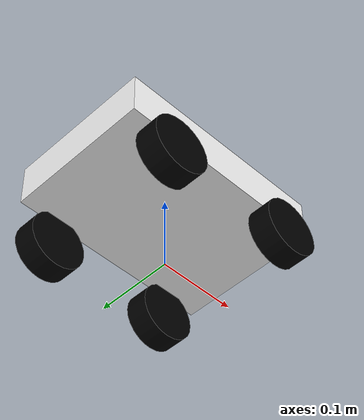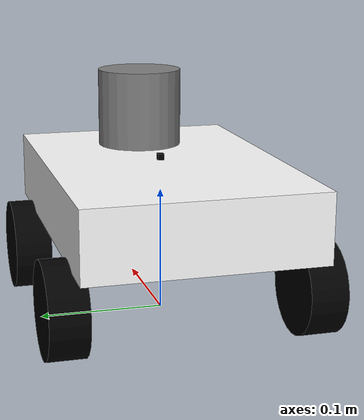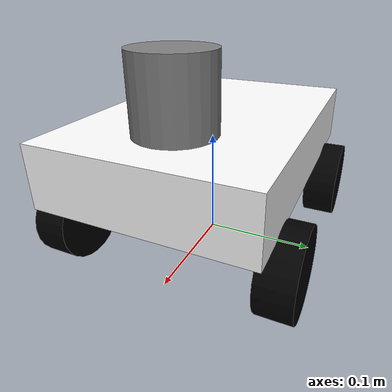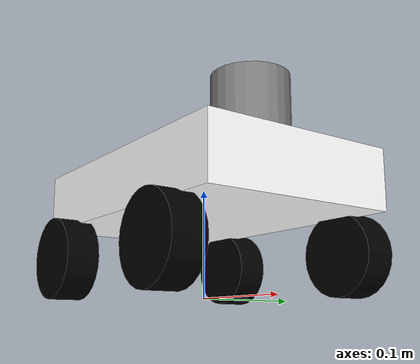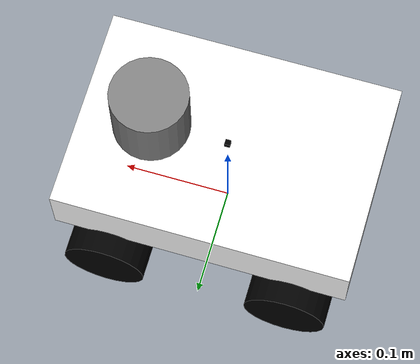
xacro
<?xml version="1.0" ?>
<robot name="mini_mec" xmlns:xacro="http://www.ros.org/wiki/xacro">

    <!-- Include common properties and gazebo-specific configurations -->
    <xacro:include filename="common_properties.xacro"/>
    <xacro:include filename="mobile_base_gazebo.xacro"/>

    <!-- Base link definition -->
    <link name="base_link">
        <visual>
            <origin xyz=" 0 0 0.0975" rpy="0 0 0" />
            <geometry>
                <box size="0.27 0.185 0.055"/>
            </geometry>
            <material name="white">
                <color rgba="1 1 1 1"/>
            </material>
        </visual>
        <collision>
            <origin xyz=" 0 0 0.0975" rpy="0 0 0" />
            <geometry>
                <box size="0.27 0.185 0.055"/>
            </geometry>
        </collision>
        <xacro:box_inertia m="3.23" l="0.54" w="0.37" h="0.11" xyz="0 0 0.0975" rpy="0 0 0"/> <!-- l, w, h is 2x the value to fix inertia values-->
    </link>
    <!-- Left wheel joint and link -->

    <link name="left_wheel_link">
        <visual>
            <origin xyz="0 0 0" rpy="0 0 0" />
            <geometry>
                <cylinder radius="0.0375" length = "0.03"/>
            </geometry>
            <material name="black">
                <color rgba="0 0 0 1"/>
            </material>
        </visual>
        <collision>
            <origin xyz="0 0 0" rpy="0 0 0" />
            <geometry>
                <cylinder radius="0.0375" length = "0.03"/>
            </geometry>
        </collision>
        <xacro:cylinder_inertia m="0.18" r="0.075" h="0.06" xyz="0 0 0" rpy="0 0 0"/> <!-- r, h is 2x the visual to fix inertia values-->
    </link>

    <joint name="left_wheel_joint" type="continuous">
        <origin xyz="-0.085 0.0975 0.0375" rpy="1.57 0 0"/>
        <parent link="base_link"/>
        <child link="left_wheel_link"/>
        <axis xyz="0 0 1"/>
    </joint>

    <joint name="right_wheel_joint" type="continuous">
        <origin xyz="-0.085 -0.0975 0.0375" rpy="1.57 0 0"/>
        <parent link="base_link"/>
        <child link="right_wheel_link"/>
        <axis xyz="0 0 1"/>
    </joint>

    <link name="right_wheel_link">
        <visual>
            <origin xyz="0 0 0" rpy="0 0 0" />
            <geometry>
                <cylinder radius="0.0375" length = "0.03"/>
            </geometry>
            <material name="black">
                <color rgba="0 0 0 1"/>
            </material>
        </visual>
        <collision>
            <origin xyz="0 0 0" rpy="0 0 0" />
            <geometry>
                <cylinder radius="0.0375" length = "0.03"/>
            </geometry>
        </collision>
        <xacro:cylinder_inertia m="0.18" r="0.075" h="0.06" xyz="0 0 0" rpy="0 0 0"/> <!-- r, h is 2x the visual to fix inertia values-->
    </link>

      <joint name="left_front_joint" type="continuous">
        <origin xyz="0.085 0.0975 0.0375" rpy="1.57 0 0"/>
        <parent link="base_link"/>
        <child link="left_front_link"/>
        <axis xyz="0 0 1"/>
    </joint>

    <link name="left_front_link">
        <visual>
            <origin xyz="0 0 0" rpy="0 0 0" />
            <geometry>
                <cylinder radius="0.0375" length = "0.03"/>
            </geometry>
            <material name="black">
                <color rgba="0 0 0 1"/>
            </material>
        </visual>
        <collision>
            <origin xyz="0 0 0" rpy="0 0 0" />
            <geometry>
                <cylinder radius="0.0375" length = "0.03"/>
            </geometry>
        </collision>
        <xacro:cylinder_inertia m="0.18" r="0.075" h="0.06" xyz="0 0 0" rpy="0 0 0"/> <!-- r, h is 2x the visual to fix inertia values-->
    </link>

    <joint name="right_front_joint" type="continuous">
        <origin xyz="0.085 -0.0975 0.0375" rpy="1.57 0 0"/>
        <parent link="base_link"/>
        <child link="right_front_link"/>
        <axis xyz="0 0 1"/>
    </joint>

    <link name="right_front_link">
        <visual>
            <origin xyz="0 0 0" rpy="0 0 0" />
            <geometry>
                <cylinder radius="0.0375" length = "0.03"/>
            </geometry>
            <material name="black">
                <color rgba="0 0 0 1"/>
            </material>
        </visual>
        <collision>
            <origin xyz="0 0 0" rpy="0 0 0" />
            <geometry>
                <cylinder radius="0.0375" length = "0.03"/>
            </geometry>
        </collision>
        <xacro:cylinder_inertia m="0.18" r="0.075" h="0.06" xyz="0 0 0" rpy="0 0 0"/> <!-- r, h is 2x the visual to fix inertia values-->
    </link>

    <link name="imu_link">
        <xacro:box_inertia m="0.005" l="0.005" w="0.005" h="0.005" xyz="0 0 0.0975" rpy="0 0 0"/>
        <visual>
            <origin xyz="0 0 0.0850" rpy="0 0 0"/>
            <geometry>
                <box size="0.005 0.005 0.005"/>
            </geometry>
            <material name="black">
                <color rgba="0 0 0 1"/>
            </material>
        </visual>
        <collision>
            <origin xyz="0 0 0.0850" rpy="0 0 0"/>
            <geometry>
                <box size="0.005 0.005 0.005"/>
            </geometry>
        </collision>
    </link>
    <joint name="imu_joint" type="fixed">
        <parent link="base_link"/>
        <child link="imu_link"/>
        <origin xyz="0 0 0.0425" rpy="0 0 0"/>
    </joint>
    <link name="lidar_link">
        <visual>
            <origin xyz="0.035 0 0.0785" rpy="0 0 0"/>
            <geometry>
                <cylinder radius="0.035" length="0.065"/>
            </geometry>
            <material name="grey">
                <color rgba="0.5 0.5 0.5 1"/>
            </material>
        </visual>
        <collision>
            <origin xyz="0.035 0 0.0785" rpy="0 0 0"/>
            <geometry>
                <cylinder radius="0.035" length="0.065"/>
            </geometry>
        </collision>
        <inertial>
            <origin xyz="0.035 0 0.0785" rpy="0 0 0"/>
            <mass value="0.8"/>
            <inertia ixx="0.002" ixy="0" ixz="0" iyy="0.002" iyz="0" izz="0.002"/>
        </inertial>
    </link>

    <joint name="lidar_joint" type="fixed">
        <parent link="base_link"/>
        <child link="lidar_link"/>
        <origin xyz="0.035 0 0.0785" rpy="0 0 0"/>
    </joint>
</robot>

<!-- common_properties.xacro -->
<robot xmlns:xacro="http://www.ros.org/wiki/xacro">

    <xacro:macro name="box_inertia" params="m l w h xyz rpy">
        <inertial>
            <origin xyz="${xyz}" rpy="${rpy}"/>
            <mass value="${m}"/>
            <inertia ixx="${m*(w*w+h*h)/12}" ixy="0" ixz="0"
                iyy="${m*(l*l+h*h)/12}" iyz="0" izz="${m*(l*l+w*w)/12}"/>
        </inertial>
    </xacro:macro>

    <xacro:macro name="cylinder_inertia" params="m r h xyz rpy">
        <inertial>
            <origin xyz="${xyz}" rpy="${rpy}"/>
            <mass value="${m}"/>
            <inertia ixx="${m*(3*r*r+h*h)/12}" ixy="0" ixz="0"
                iyy="${m*(3*r*r+h*h)/12}" iyz="0" izz="${m*r*r/2}"/>
        </inertial>
    </xacro:macro>

</robot>
